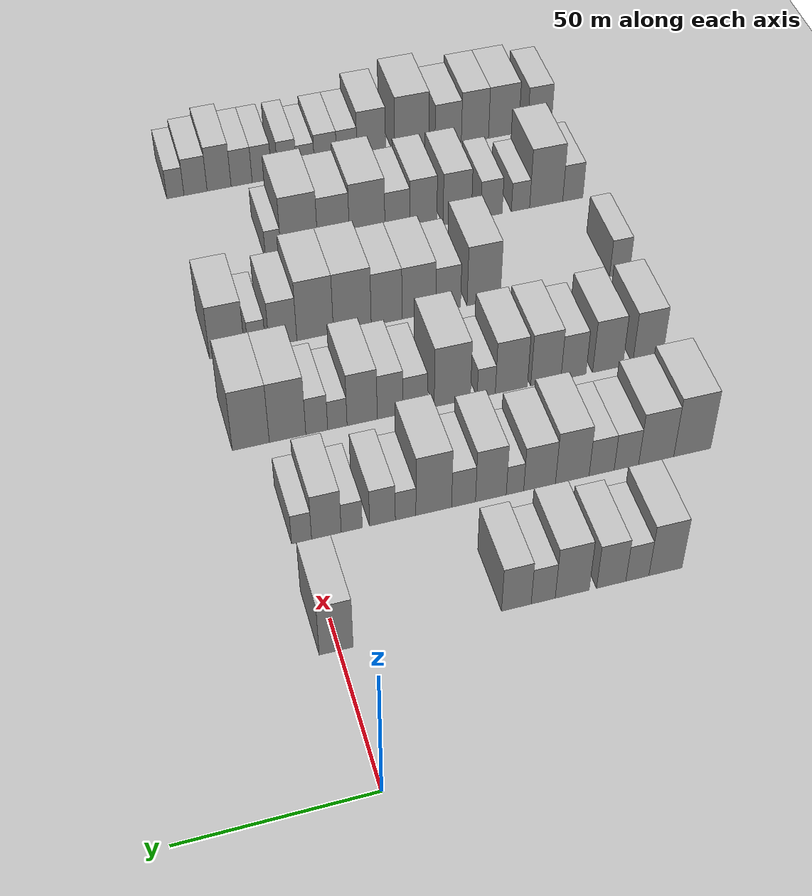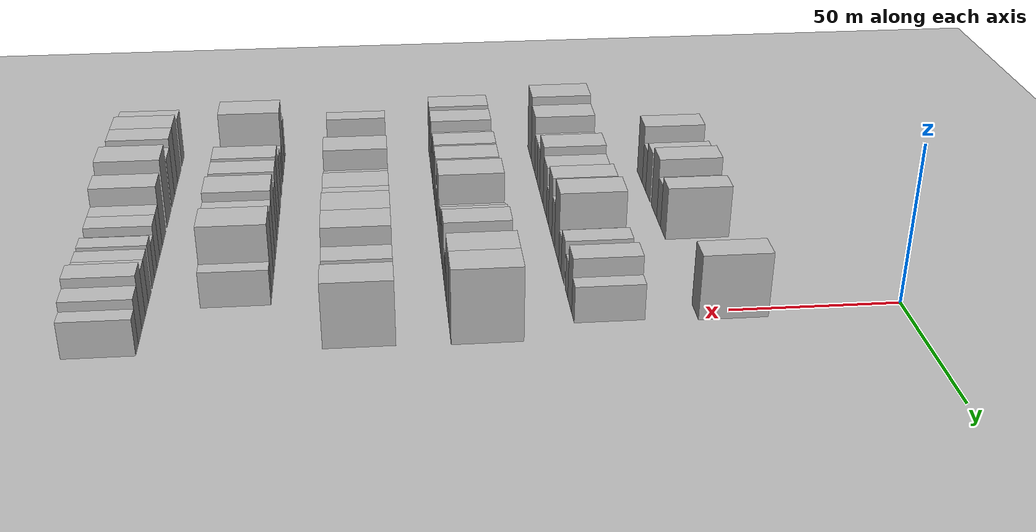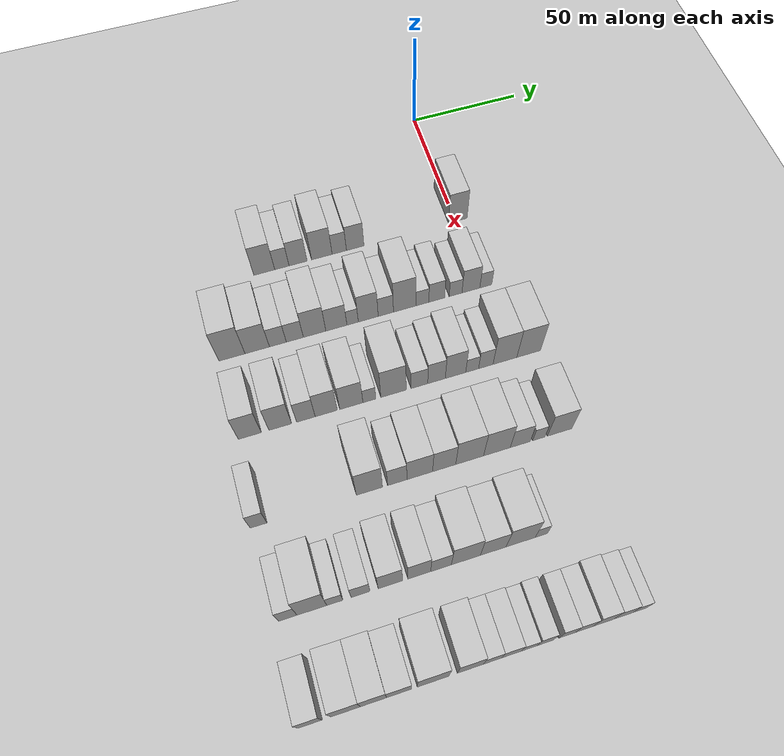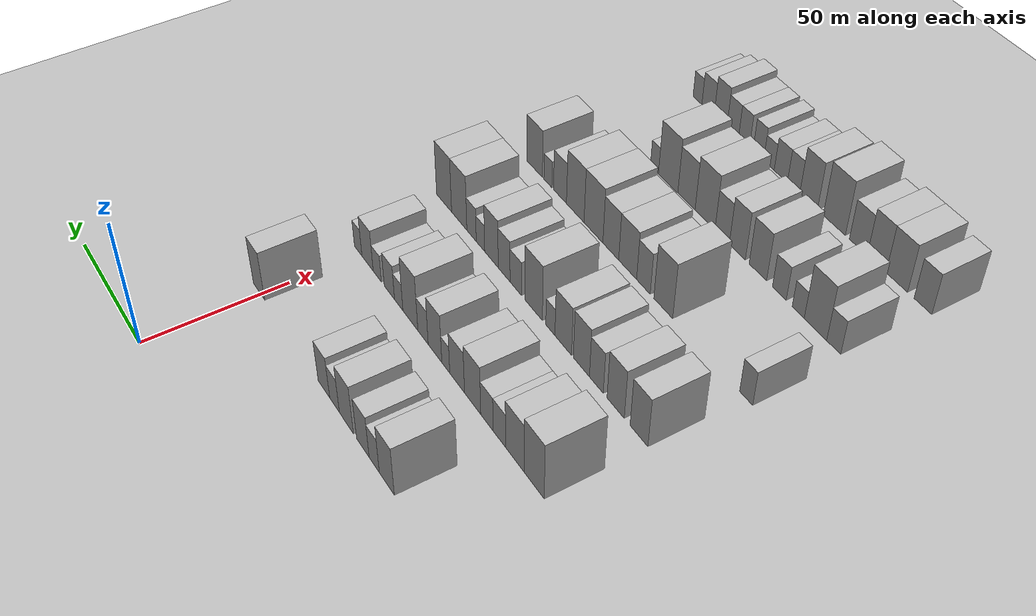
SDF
<sdf version="1.6">
 <world name="default">
  <include><name>ground_plane_1</name><uri>model://HANNAS_ground_plane</uri></include>
  <include>
   <name>ground_plane_2</name>
   <uri>model://HANNAS_ground_plane</uri>
   <pose>100 0 0  0 0 0</pose>
  </include>
  <model name="building_46">
   <static>1</static>
   <pose>50.0000 -86.3542 0 0.000000 0.000000 0.000000</pose>
   <link name="link">
    <pose>0 0 10.50 0 0 0</pose>
    <collision name="collision"><geometry><box><size>20.0000 9.0873 21.0000</size></box></geometry></collision>
    <visual name="visual">
     <cast_shadows>0</cast_shadows>
     <geometry><box><size>20.0000 9.0873 21.0000</size></box></geometry>
     <material>
      <script>
       <uri>model://HANNAS_wall/materials/scripts</uri>
       <uri>model://HANNAS_wall/materials/textures</uri>
       <name>vrc/HANNAS_wall</name>
      </script>
     </material>
    </visual>
   </link>
  </model>
  <model name="building_47">
   <static>1</static>
   <pose>50.0000 -78.6596 0 0.000000 0.000000 0.000000</pose>
   <link name="link">
    <pose>0 0 7.50 0 0 0</pose>
    <collision name="collision"><geometry><box><size>20.0000 6.3020 15.0000</size></box></geometry></collision>
    <visual name="visual">
     <cast_shadows>0</cast_shadows>
     <geometry><box><size>20.0000 6.3020 15.0000</size></box></geometry>
     <material>
      <script>
       <uri>model://HANNAS_wall/materials/scripts</uri>
       <uri>model://HANNAS_wall/materials/textures</uri>
       <name>vrc/HANNAS_wall</name>
      </script>
     </material>
    </visual>
   </link>
  </model>
  <model name="building_48">
   <static>1</static>
   <pose>50.0000 -71.5418 0 0.000000 0.000000 0.000000</pose>
   <link name="link">
    <pose>0 0 9.00 0 0 0</pose>
    <collision name="collision"><geometry><box><size>20.0000 7.9337 18.0000</size></box></geometry></collision>
    <visual name="visual">
     <cast_shadows>0</cast_shadows>
     <geometry><box><size>20.0000 7.9337 18.0000</size></box></geometry>
     <material>
      <script>
       <uri>model://HANNAS_wall/materials/scripts</uri>
       <uri>model://HANNAS_wall/materials/textures</uri>
       <name>vrc/HANNAS_wall</name>
      </script>
     </material>
    </visual>
   </link>
  </model>
  <model name="building_49">
   <static>1</static>
   <pose>50.0000 -61.0111 0 0.000000 0.000000 0.000000</pose>
   <link name="link">
    <pose>0 0 10.50 0 0 0</pose>
    <collision name="collision"><geometry><box><size>20.0000 9.1278 21.0000</size></box></geometry></collision>
    <visual name="visual">
     <cast_shadows>0</cast_shadows>
     <geometry><box><size>20.0000 9.1278 21.0000</size></box></geometry>
     <material>
      <script>
       <uri>model://HANNAS_wall/materials/scripts</uri>
       <uri>model://HANNAS_wall/materials/textures</uri>
       <name>vrc/HANNAS_wall</name>
      </script>
     </material>
    </visual>
   </link>
  </model>
  <model name="building_50">
   <static>1</static>
   <pose>50.0000 -53.2371 0 0.000000 0.000000 0.000000</pose>
   <link name="link">
    <pose>0 0 7.50 0 0 0</pose>
    <collision name="collision"><geometry><box><size>20.0000 6.4201 15.0000</size></box></geometry></collision>
    <visual name="visual">
     <cast_shadows>0</cast_shadows>
     <geometry><box><size>20.0000 6.4201 15.0000</size></box></geometry>
     <material>
      <script>
       <uri>model://HANNAS_wall/materials/scripts</uri>
       <uri>model://HANNAS_wall/materials/textures</uri>
       <name>vrc/HANNAS_wall</name>
      </script>
     </material>
    </visual>
   </link>
  </model>
  <model name="building_51">
   <static>1</static>
   <pose>50.0000 -46.0940 0 0.000000 0.000000 0.000000</pose>
   <link name="link">
    <pose>0 0 9.00 0 0 0</pose>
    <collision name="collision"><geometry><box><size>20.0000 7.8661 18.0000</size></box></geometry></collision>
    <visual name="visual">
     <cast_shadows>0</cast_shadows>
     <geometry><box><size>20.0000 7.8661 18.0000</size></box></geometry>
     <material>
      <script>
       <uri>model://HANNAS_wall/materials/scripts</uri>
       <uri>model://HANNAS_wall/materials/textures</uri>
       <name>vrc/HANNAS_wall</name>
      </script>
     </material>
    </visual>
   </link>
  </model>
  <model name="building_52">
   <static>1</static>
   <pose>50.0000 0.8104 0 0.000000 0.000000 0.000000</pose>
   <link name="link">
    <pose>0 0 10.50 0 0 0</pose>
    <collision name="collision"><geometry><box><size>20.0000 8.6476 21.0000</size></box></geometry></collision>
    <visual name="visual">
     <cast_shadows>0</cast_shadows>
     <geometry><box><size>20.0000 8.6476 21.0000</size></box></geometry>
     <material>
      <script>
       <uri>model://HANNAS_wall/materials/scripts</uri>
       <uri>model://HANNAS_wall/materials/textures</uri>
       <name>vrc/HANNAS_wall</name>
      </script>
     </material>
    </visual>
   </link>
  </model>
  <model name="building_158">
   <static>1</static>
   <pose>85.0000 -107.9376 0 0.000000 0.000000 0.000000</pose>
   <link name="link">
    <pose>0 0 12.00 0 0 0</pose>
    <collision name="collision"><geometry><box><size>20.0000 10.7499 24.0000</size></box></geometry></collision>
    <visual name="visual">
     <cast_shadows>0</cast_shadows>
     <geometry><box><size>20.0000 10.7499 24.0000</size></box></geometry>
     <material>
      <script>
       <uri>model://HANNAS_wall/materials/scripts</uri>
       <uri>model://HANNAS_wall/materials/textures</uri>
       <name>vrc/HANNAS_wall</name>
      </script>
     </material>
    </visual>
   </link>
  </model>
  <model name="building_159">
   <static>1</static>
   <pose>85.0000 -97.4823 0 0.000000 0.000000 0.000000</pose>
   <link name="link">
    <pose>0 0 10.50 0 0 0</pose>
    <collision name="collision"><geometry><box><size>20.0000 10.1606 21.0000</size></box></geometry></collision>
    <visual name="visual">
     <cast_shadows>0</cast_shadows>
     <geometry><box><size>20.0000 10.1606 21.0000</size></box></geometry>
     <material>
      <script>
       <uri>model://HANNAS_wall/materials/scripts</uri>
       <uri>model://HANNAS_wall/materials/textures</uri>
       <name>vrc/HANNAS_wall</name>
      </script>
     </material>
    </visual>
   </link>
  </model>
  <model name="building_160">
   <static>1</static>
   <pose>85.0000 -88.8793 0 0.000000 0.000000 0.000000</pose>
   <link name="link">
    <pose>0 0 7.50 0 0 0</pose>
    <collision name="collision"><geometry><box><size>20.0000 7.0454 15.0000</size></box></geometry></collision>
    <visual name="visual">
     <cast_shadows>0</cast_shadows>
     <geometry><box><size>20.0000 7.0454 15.0000</size></box></geometry>
     <material>
      <script>
       <uri>model://HANNAS_wall/materials/scripts</uri>
       <uri>model://HANNAS_wall/materials/textures</uri>
       <name>vrc/HANNAS_wall</name>
      </script>
     </material>
    </visual>
   </link>
  </model>
  <model name="building_161">
   <static>1</static>
   <pose>85.0000 -81.7732 0 0.000000 0.000000 0.000000</pose>
   <link name="link">
    <pose>0 0 7.50 0 0 0</pose>
    <collision name="collision"><geometry><box><size>20.0000 7.1669 15.0000</size></box></geometry></collision>
    <visual name="visual">
     <cast_shadows>0</cast_shadows>
     <geometry><box><size>20.0000 7.1669 15.0000</size></box></geometry>
     <material>
      <script>
       <uri>model://HANNAS_wall/materials/scripts</uri>
       <uri>model://HANNAS_wall/materials/textures</uri>
       <name>vrc/HANNAS_wall</name>
      </script>
     </material>
    </visual>
   </link>
  </model>
  <model name="building_162">
   <static>1</static>
   <pose>85.0000 -73.4144 0 0.000000 0.000000 0.000000</pose>
   <link name="link">
    <pose>0 0 10.50 0 0 0</pose>
    <collision name="collision"><geometry><box><size>20.0000 9.5506 21.0000</size></box></geometry></collision>
    <visual name="visual">
     <cast_shadows>0</cast_shadows>
     <geometry><box><size>20.0000 9.5506 21.0000</size></box></geometry>
     <material>
      <script>
       <uri>model://HANNAS_wall/materials/scripts</uri>
       <uri>model://HANNAS_wall/materials/textures</uri>
       <name>vrc/HANNAS_wall</name>
      </script>
     </material>
    </visual>
   </link>
  </model>
  <model name="building_163">
   <static>1</static>
   <pose>85.0000 -64.1624 0 0.000000 0.000000 0.000000</pose>
   <link name="link">
    <pose>0 0 9.00 0 0 0</pose>
    <collision name="collision"><geometry><box><size>20.0000 8.9534 18.0000</size></box></geometry></collision>
    <visual name="visual">
     <cast_shadows>0</cast_shadows>
     <geometry><box><size>20.0000 8.9534 18.0000</size></box></geometry>
     <material>
      <script>
       <uri>model://HANNAS_wall/materials/scripts</uri>
       <uri>model://HANNAS_wall/materials/textures</uri>
       <name>vrc/HANNAS_wall</name>
      </script>
     </material>
    </visual>
   </link>
  </model>
  <model name="building_164">
   <static>1</static>
   <pose>85.0000 -57.2387 0 0.000000 0.000000 0.000000</pose>
   <link name="link">
    <pose>0 0 6.00 0 0 0</pose>
    <collision name="collision"><geometry><box><size>20.0000 4.8940 12.0000</size></box></geometry></collision>
    <visual name="visual">
     <cast_shadows>0</cast_shadows>
     <geometry><box><size>20.0000 4.8940 12.0000</size></box></geometry>
     <material>
      <script>
       <uri>model://HANNAS_wall/materials/scripts</uri>
       <uri>model://HANNAS_wall/materials/textures</uri>
       <name>vrc/HANNAS_wall</name>
      </script>
     </material>
    </visual>
   </link>
  </model>
  <model name="building_165">
   <static>1</static>
   <pose>85.0000 -50.5072 0 0.000000 0.000000 0.000000</pose>
   <link name="link">
    <pose>0 0 10.50 0 0 0</pose>
    <collision name="collision"><geometry><box><size>20.0000 8.5690 21.0000</size></box></geometry></collision>
    <visual name="visual">
     <cast_shadows>0</cast_shadows>
     <geometry><box><size>20.0000 8.5690 21.0000</size></box></geometry>
     <material>
      <script>
       <uri>model://HANNAS_wall/materials/scripts</uri>
       <uri>model://HANNAS_wall/materials/textures</uri>
       <name>vrc/HANNAS_wall</name>
      </script>
     </material>
    </visual>
   </link>
  </model>
  <model name="building_166">
   <static>1</static>
   <pose>85.0000 -42.9119 0 0.000000 0.000000 0.000000</pose>
   <link name="link">
    <pose>0 0 7.50 0 0 0</pose>
    <collision name="collision"><geometry><box><size>20.0000 6.6216 15.0000</size></box></geometry></collision>
    <visual name="visual">
     <cast_shadows>0</cast_shadows>
     <geometry><box><size>20.0000 6.6216 15.0000</size></box></geometry>
     <material>
      <script>
       <uri>model://HANNAS_wall/materials/scripts</uri>
       <uri>model://HANNAS_wall/materials/textures</uri>
       <name>vrc/HANNAS_wall</name>
      </script>
     </material>
    </visual>
   </link>
  </model>
  <model name="building_167">
   <static>1</static>
   <pose>85.0000 -34.6883 0 0.000000 0.000000 0.000000</pose>
   <link name="link">
    <pose>0 0 12.00 0 0 0</pose>
    <collision name="collision"><geometry><box><size>20.0000 9.8257 24.0000</size></box></geometry></collision>
    <visual name="visual">
     <cast_shadows>0</cast_shadows>
     <geometry><box><size>20.0000 9.8257 24.0000</size></box></geometry>
     <material>
      <script>
       <uri>model://HANNAS_wall/materials/scripts</uri>
       <uri>model://HANNAS_wall/materials/textures</uri>
       <name>vrc/HANNAS_wall</name>
      </script>
     </material>
    </visual>
   </link>
  </model>
  <model name="building_168">
   <static>1</static>
   <pose>85.0000 -26.9645 0 0.000000 0.000000 0.000000</pose>
   <link name="link">
    <pose>0 0 6.00 0 0 0</pose>
    <collision name="collision"><geometry><box><size>20.0000 5.6218 12.0000</size></box></geometry></collision>
    <visual name="visual">
     <cast_shadows>0</cast_shadows>
     <geometry><box><size>20.0000 5.6218 12.0000</size></box></geometry>
     <material>
      <script>
       <uri>model://HANNAS_wall/materials/scripts</uri>
       <uri>model://HANNAS_wall/materials/textures</uri>
       <name>vrc/HANNAS_wall</name>
      </script>
     </material>
    </visual>
   </link>
  </model>
  <model name="building_169">
   <static>1</static>
   <pose>85.0000 -20.6513 0 0.000000 0.000000 0.000000</pose>
   <link name="link">
    <pose>0 0 7.50 0 0 0</pose>
    <collision name="collision"><geometry><box><size>20.0000 7.0046 15.0000</size></box></geometry></collision>
    <visual name="visual">
     <cast_shadows>0</cast_shadows>
     <geometry><box><size>20.0000 7.0046 15.0000</size></box></geometry>
     <material>
      <script>
       <uri>model://HANNAS_wall/materials/scripts</uri>
       <uri>model://HANNAS_wall/materials/textures</uri>
       <name>vrc/HANNAS_wall</name>
      </script>
     </material>
    </visual>
   </link>
  </model>
  <model name="building_170">
   <static>1</static>
   <pose>85.0000 -12.3137 0 0.000000 0.000000 0.000000</pose>
   <link name="link">
    <pose>0 0 6.00 0 0 0</pose>
    <collision name="collision"><geometry><box><size>20.0000 5.6706 12.0000</size></box></geometry></collision>
    <visual name="visual">
     <cast_shadows>0</cast_shadows>
     <geometry><box><size>20.0000 5.6706 12.0000</size></box></geometry>
     <material>
      <script>
       <uri>model://HANNAS_wall/materials/scripts</uri>
       <uri>model://HANNAS_wall/materials/textures</uri>
       <name>vrc/HANNAS_wall</name>
      </script>
     </material>
    </visual>
   </link>
  </model>
  <model name="building_171">
   <static>1</static>
   <pose>85.0000 -5.4890 0 0.000000 0.000000 0.000000</pose>
   <link name="link">
    <pose>0 0 9.00 0 0 0</pose>
    <collision name="collision"><geometry><box><size>20.0000 7.9788 18.0000</size></box></geometry></collision>
    <visual name="visual">
     <cast_shadows>0</cast_shadows>
     <geometry><box><size>20.0000 7.9788 18.0000</size></box></geometry>
     <material>
      <script>
       <uri>model://HANNAS_wall/materials/scripts</uri>
       <uri>model://HANNAS_wall/materials/textures</uri>
       <name>vrc/HANNAS_wall</name>
      </script>
     </material>
    </visual>
   </link>
  </model>
  <model name="building_172">
   <static>1</static>
   <pose>85.0000 1.1762 0 0.000000 0.000000 0.000000</pose>
   <link name="link">
    <pose>0 0 6.00 0 0 0</pose>
    <collision name="collision"><geometry><box><size>20.0000 5.3516 12.0000</size></box></geometry></collision>
    <visual name="visual">
     <cast_shadows>0</cast_shadows>
     <geometry><box><size>20.0000 5.3516 12.0000</size></box></geometry>
     <material>
      <script>
       <uri>model://HANNAS_wall/materials/scripts</uri>
       <uri>model://HANNAS_wall/materials/textures</uri>
       <name>vrc/HANNAS_wall</name>
      </script>
     </material>
    </visual>
   </link>
  </model>
  <model name="building_283">
   <static>1</static>
   <pose>120.0000 -108.5047 0 0.000000 0.000000 0.000000</pose>
   <link name="link">
    <pose>0 0 10.50 0 0 0</pose>
    <collision name="collision"><geometry><box><size>20.0000 9.0826 21.0000</size></box></geometry></collision>
    <visual name="visual">
     <cast_shadows>0</cast_shadows>
     <geometry><box><size>20.0000 9.0826 21.0000</size></box></geometry>
     <material>
      <script>
       <uri>model://HANNAS_wall/materials/scripts</uri>
       <uri>model://HANNAS_wall/materials/textures</uri>
       <name>vrc/HANNAS_wall</name>
      </script>
     </material>
    </visual>
   </link>
  </model>
  <model name="building_284">
   <static>1</static>
   <pose>120.0000 -96.4222 0 0.000000 0.000000 0.000000</pose>
   <link name="link">
    <pose>0 0 10.50 0 0 0</pose>
    <collision name="collision"><geometry><box><size>20.0000 9.0823 21.0000</size></box></geometry></collision>
    <visual name="visual">
     <cast_shadows>0</cast_shadows>
     <geometry><box><size>20.0000 9.0823 21.0000</size></box></geometry>
     <material>
      <script>
       <uri>model://HANNAS_wall/materials/scripts</uri>
       <uri>model://HANNAS_wall/materials/textures</uri>
       <name>vrc/HANNAS_wall</name>
      </script>
     </material>
    </visual>
   </link>
  </model>
  <model name="building_285">
   <static>1</static>
   <pose>120.0000 -86.1348 0 0.000000 0.000000 0.000000</pose>
   <link name="link">
    <pose>0 0 9.00 0 0 0</pose>
    <collision name="collision"><geometry><box><size>20.0000 7.4926 18.0000</size></box></geometry></collision>
    <visual name="visual">
     <cast_shadows>0</cast_shadows>
     <geometry><box><size>20.0000 7.4926 18.0000</size></box></geometry>
     <material>
      <script>
       <uri>model://HANNAS_wall/materials/scripts</uri>
       <uri>model://HANNAS_wall/materials/textures</uri>
       <name>vrc/HANNAS_wall</name>
      </script>
     </material>
    </visual>
   </link>
  </model>
  <model name="building_286">
   <static>1</static>
   <pose>120.0000 -77.9074 0 0.000000 0.000000 0.000000</pose>
   <link name="link">
    <pose>0 0 10.50 0 0 0</pose>
    <collision name="collision"><geometry><box><size>20.0000 8.9621 21.0000</size></box></geometry></collision>
    <visual name="visual">
     <cast_shadows>0</cast_shadows>
     <geometry><box><size>20.0000 8.9621 21.0000</size></box></geometry>
     <material>
      <script>
       <uri>model://HANNAS_wall/materials/scripts</uri>
       <uri>model://HANNAS_wall/materials/textures</uri>
       <name>vrc/HANNAS_wall</name>
      </script>
     </material>
    </visual>
   </link>
  </model>
  <model name="building_287">
   <static>1</static>
   <pose>120.0000 -67.7003 0 0.000000 0.000000 0.000000</pose>
   <link name="link">
    <pose>0 0 10.50 0 0 0</pose>
    <collision name="collision"><geometry><box><size>20.0000 9.4520 21.0000</size></box></geometry></collision>
    <visual name="visual">
     <cast_shadows>0</cast_shadows>
     <geometry><box><size>20.0000 9.4520 21.0000</size></box></geometry>
     <material>
      <script>
       <uri>model://HANNAS_wall/materials/scripts</uri>
       <uri>model://HANNAS_wall/materials/textures</uri>
       <name>vrc/HANNAS_wall</name>
      </script>
     </material>
    </visual>
   </link>
  </model>
  <model name="building_288">
   <static>1</static>
   <pose>120.0000 -60.3147 0 0.000000 0.000000 0.000000</pose>
   <link name="link">
    <pose>0 0 6.00 0 0 0</pose>
    <collision name="collision"><geometry><box><size>20.0000 5.3193 12.0000</size></box></geometry></collision>
    <visual name="visual">
     <cast_shadows>0</cast_shadows>
     <geometry><box><size>20.0000 5.3193 12.0000</size></box></geometry>
     <material>
      <script>
       <uri>model://HANNAS_wall/materials/scripts</uri>
       <uri>model://HANNAS_wall/materials/textures</uri>
       <name>vrc/HANNAS_wall</name>
      </script>
     </material>
    </visual>
   </link>
  </model>
  <model name="building_289">
   <static>1</static>
   <pose>120.0000 -50.3908 0 0.000000 0.000000 0.000000</pose>
   <link name="link">
    <pose>0 0 12.00 0 0 0</pose>
    <collision name="collision"><geometry><box><size>20.0000 10.5284 24.0000</size></box></geometry></collision>
    <visual name="visual">
     <cast_shadows>0</cast_shadows>
     <geometry><box><size>20.0000 10.5284 24.0000</size></box></geometry>
     <material>
      <script>
       <uri>model://HANNAS_wall/materials/scripts</uri>
       <uri>model://HANNAS_wall/materials/textures</uri>
       <name>vrc/HANNAS_wall</name>
      </script>
     </material>
    </visual>
   </link>
  </model>
  <model name="building_290">
   <static>1</static>
   <pose>120.0000 -39.6310 0 0.000000 0.000000 0.000000</pose>
   <link name="link">
    <pose>0 0 7.50 0 0 0</pose>
    <collision name="collision"><geometry><box><size>20.0000 6.9912 15.0000</size></box></geometry></collision>
    <visual name="visual">
     <cast_shadows>0</cast_shadows>
     <geometry><box><size>20.0000 6.9912 15.0000</size></box></geometry>
     <material>
      <script>
       <uri>model://HANNAS_wall/materials/scripts</uri>
       <uri>model://HANNAS_wall/materials/textures</uri>
       <name>vrc/HANNAS_wall</name>
      </script>
     </material>
    </visual>
   </link>
  </model>
  <model name="building_291">
   <static>1</static>
   <pose>120.0000 -32.4423 0 0.000000 0.000000 0.000000</pose>
   <link name="link">
    <pose>0 0 9.00 0 0 0</pose>
    <collision name="collision"><geometry><box><size>20.0000 7.3863 18.0000</size></box></geometry></collision>
    <visual name="visual">
     <cast_shadows>0</cast_shadows>
     <geometry><box><size>20.0000 7.3863 18.0000</size></box></geometry>
     <material>
      <script>
       <uri>model://HANNAS_wall/materials/scripts</uri>
       <uri>model://HANNAS_wall/materials/textures</uri>
       <name>vrc/HANNAS_wall</name>
      </script>
     </material>
    </visual>
   </link>
  </model>
  <model name="building_292">
   <static>1</static>
   <pose>120.0000 -24.4354 0 0.000000 0.000000 0.000000</pose>
   <link name="link">
    <pose>0 0 10.50 0 0 0</pose>
    <collision name="collision"><geometry><box><size>20.0000 8.6274 21.0000</size></box></geometry></collision>
    <visual name="visual">
     <cast_shadows>0</cast_shadows>
     <geometry><box><size>20.0000 8.6274 21.0000</size></box></geometry>
     <material>
      <script>
       <uri>model://HANNAS_wall/materials/scripts</uri>
       <uri>model://HANNAS_wall/materials/textures</uri>
       <name>vrc/HANNAS_wall</name>
      </script>
     </material>
    </visual>
   </link>
  </model>
  <model name="building_293">
   <static>1</static>
   <pose>120.0000 -17.3724 0 0.000000 0.000000 0.000000</pose>
   <link name="link">
    <pose>0 0 6.00 0 0 0</pose>
    <collision name="collision"><geometry><box><size>20.0000 5.4987 12.0000</size></box></geometry></collision>
    <visual name="visual">
     <cast_shadows>0</cast_shadows>
     <geometry><box><size>20.0000 5.4987 12.0000</size></box></geometry>
     <material>
      <script>
       <uri>model://HANNAS_wall/materials/scripts</uri>
       <uri>model://HANNAS_wall/materials/textures</uri>
       <name>vrc/HANNAS_wall</name>
      </script>
     </material>
    </visual>
   </link>
  </model>
  <model name="building_294">
   <static>1</static>
   <pose>120.0000 -11.5353 0 0.000000 0.000000 0.000000</pose>
   <link name="link">
    <pose>0 0 7.50 0 0 0</pose>
    <collision name="collision"><geometry><box><size>20.0000 6.1754 15.0000</size></box></geometry></collision>
    <visual name="visual">
     <cast_shadows>0</cast_shadows>
     <geometry><box><size>20.0000 6.1754 15.0000</size></box></geometry>
     <material>
      <script>
       <uri>model://HANNAS_wall/materials/scripts</uri>
       <uri>model://HANNAS_wall/materials/textures</uri>
       <name>vrc/HANNAS_wall</name>
      </script>
     </material>
    </visual>
   </link>
  </model>
  <model name="building_295">
   <static>1</static>
   <pose>120.0000 -3.3147 0 0.000000 0.000000 0.000000</pose>
   <link name="link">
    <pose>0 0 12.00 0 0 0</pose>
    <collision name="collision"><geometry><box><size>20.0000 10.2658 24.0000</size></box></geometry></collision>
    <visual name="visual">
     <cast_shadows>0</cast_shadows>
     <geometry><box><size>20.0000 10.2658 24.0000</size></box></geometry>
     <material>
      <script>
       <uri>model://HANNAS_wall/materials/scripts</uri>
       <uri>model://HANNAS_wall/materials/textures</uri>
       <name>vrc/HANNAS_wall</name>
      </script>
     </material>
    </visual>
   </link>
  </model>
  <model name="building_296">
   <static>1</static>
   <pose>120.0000 6.9777 0 0.000000 0.000000 0.000000</pose>
   <link name="link">
    <pose>0 0 12.00 0 0 0</pose>
    <collision name="collision"><geometry><box><size>20.0000 10.3190 24.0000</size></box></geometry></collision>
    <visual name="visual">
     <cast_shadows>0</cast_shadows>
     <geometry><box><size>20.0000 10.3190 24.0000</size></box></geometry>
     <material>
      <script>
       <uri>model://HANNAS_wall/materials/scripts</uri>
       <uri>model://HANNAS_wall/materials/textures</uri>
       <name>vrc/HANNAS_wall</name>
      </script>
     </material>
    </visual>
   </link>
  </model>
  <model name="building_403">
   <static>1</static>
   <pose>155.0000 -113.1144 0 0.000000 0.000000 0.000000</pose>
   <link name="link">
    <pose>0 0 7.50 0 0 0</pose>
    <collision name="collision"><geometry><box><size>20.0000 6.3294 15.0000</size></box></geometry></collision>
    <visual name="visual">
     <cast_shadows>0</cast_shadows>
     <geometry><box><size>20.0000 6.3294 15.0000</size></box></geometry>
     <material>
      <script>
       <uri>model://HANNAS_wall/materials/scripts</uri>
       <uri>model://HANNAS_wall/materials/textures</uri>
       <name>vrc/HANNAS_wall</name>
      </script>
     </material>
    </visual>
   </link>
  </model>
  <model name="building_404">
   <static>1</static>
   <pose>155.0000 -70.6174 0 0.000000 0.000000 0.000000</pose>
   <link name="link">
    <pose>0 0 12.00 0 0 0</pose>
    <collision name="collision"><geometry><box><size>20.0000 10.2215 24.0000</size></box></geometry></collision>
    <visual name="visual">
     <cast_shadows>0</cast_shadows>
     <geometry><box><size>20.0000 10.2215 24.0000</size></box></geometry>
     <material>
      <script>
       <uri>model://HANNAS_wall/materials/scripts</uri>
       <uri>model://HANNAS_wall/materials/textures</uri>
       <name>vrc/HANNAS_wall</name>
      </script>
     </material>
    </visual>
   </link>
  </model>
  <model name="building_405">
   <static>1</static>
   <pose>155.0000 -59.7151 0 0.000000 0.000000 0.000000</pose>
   <link name="link">
    <pose>0 0 9.00 0 0 0</pose>
    <collision name="collision"><geometry><box><size>20.0000 7.5831 18.0000</size></box></geometry></collision>
    <visual name="visual">
     <cast_shadows>0</cast_shadows>
     <geometry><box><size>20.0000 7.5831 18.0000</size></box></geometry>
     <material>
      <script>
       <uri>model://HANNAS_wall/materials/scripts</uri>
       <uri>model://HANNAS_wall/materials/textures</uri>
       <name>vrc/HANNAS_wall</name>
      </script>
     </material>
    </visual>
   </link>
  </model>
  <model name="building_406">
   <static>1</static>
   <pose>155.0000 -50.8038 0 0.000000 0.000000 0.000000</pose>
   <link name="link">
    <pose>0 0 10.50 0 0 0</pose>
    <collision name="collision"><geometry><box><size>20.0000 10.2396 21.0000</size></box></geometry></collision>
    <visual name="visual">
     <cast_shadows>0</cast_shadows>
     <geometry><box><size>20.0000 10.2396 21.0000</size></box></geometry>
     <material>
      <script>
       <uri>model://HANNAS_wall/materials/scripts</uri>
       <uri>model://HANNAS_wall/materials/textures</uri>
       <name>vrc/HANNAS_wall</name>
      </script>
     </material>
    </visual>
   </link>
  </model>
  <model name="building_407">
   <static>1</static>
   <pose>155.0000 -41.0567 0 0.000000 0.000000 0.000000</pose>
   <link name="link">
    <pose>0 0 10.50 0 0 0</pose>
    <collision name="collision"><geometry><box><size>20.0000 9.2545 21.0000</size></box></geometry></collision>
    <visual name="visual">
     <cast_shadows>0</cast_shadows>
     <geometry><box><size>20.0000 9.2545 21.0000</size></box></geometry>
     <material>
      <script>
       <uri>model://HANNAS_wall/materials/scripts</uri>
       <uri>model://HANNAS_wall/materials/textures</uri>
       <name>vrc/HANNAS_wall</name>
      </script>
     </material>
    </visual>
   </link>
  </model>
  <model name="building_408">
   <static>1</static>
   <pose>155.0000 -30.7791 0 0.000000 0.000000 0.000000</pose>
   <link name="link">
    <pose>0 0 12.00 0 0 0</pose>
    <collision name="collision"><geometry><box><size>20.0000 11.3008 24.0000</size></box></geometry></collision>
    <visual name="visual">
     <cast_shadows>0</cast_shadows>
     <geometry><box><size>20.0000 11.3008 24.0000</size></box></geometry>
     <material>
      <script>
       <uri>model://HANNAS_wall/materials/scripts</uri>
       <uri>model://HANNAS_wall/materials/textures</uri>
       <name>vrc/HANNAS_wall</name>
      </script>
     </material>
    </visual>
   </link>
  </model>
  <model name="building_409">
   <static>1</static>
   <pose>155.0000 -19.6947 0 0.000000 0.000000 0.000000</pose>
   <link name="link">
    <pose>0 0 12.00 0 0 0</pose>
    <collision name="collision"><geometry><box><size>20.0000 10.8681 24.0000</size></box></geometry></collision>
    <visual name="visual">
     <cast_shadows>0</cast_shadows>
     <geometry><box><size>20.0000 10.8681 24.0000</size></box></geometry>
     <material>
      <script>
       <uri>model://HANNAS_wall/materials/scripts</uri>
       <uri>model://HANNAS_wall/materials/textures</uri>
       <name>vrc/HANNAS_wall</name>
      </script>
     </material>
    </visual>
   </link>
  </model>
  <model name="building_410">
   <static>1</static>
   <pose>155.0000 -10.1672 0 0.000000 0.000000 0.000000</pose>
   <link name="link">
    <pose>0 0 9.00 0 0 0</pose>
    <collision name="collision"><geometry><box><size>20.0000 8.1869 18.0000</size></box></geometry></collision>
    <visual name="visual">
     <cast_shadows>0</cast_shadows>
     <geometry><box><size>20.0000 8.1869 18.0000</size></box></geometry>
     <material>
      <script>
       <uri>model://HANNAS_wall/materials/scripts</uri>
       <uri>model://HANNAS_wall/materials/textures</uri>
       <name>vrc/HANNAS_wall</name>
      </script>
     </material>
    </visual>
   </link>
  </model>
  <model name="building_411">
   <static>1</static>
   <pose>155.0000 -2.5111 0 0.000000 0.000000 0.000000</pose>
   <link name="link">
    <pose>0 0 6.00 0 0 0</pose>
    <collision name="collision"><geometry><box><size>20.0000 5.1253 12.0000</size></box></geometry></collision>
    <visual name="visual">
     <cast_shadows>0</cast_shadows>
     <geometry><box><size>20.0000 5.1253 12.0000</size></box></geometry>
     <material>
      <script>
       <uri>model://HANNAS_wall/materials/scripts</uri>
       <uri>model://HANNAS_wall/materials/textures</uri>
       <name>vrc/HANNAS_wall</name>
      </script>
     </material>
    </visual>
   </link>
  </model>
  <model name="building_412">
   <static>1</static>
   <pose>155.0000 6.1684 0 0.000000 0.000000 0.000000</pose>
   <link name="link">
    <pose>0 0 10.50 0 0 0</pose>
    <collision name="collision"><geometry><box><size>20.0000 10.2336 21.0000</size></box></geometry></collision>
    <visual name="visual">
     <cast_shadows>0</cast_shadows>
     <geometry><box><size>20.0000 10.2336 21.0000</size></box></geometry>
     <material>
      <script>
       <uri>model://HANNAS_wall/materials/scripts</uri>
       <uri>model://HANNAS_wall/materials/textures</uri>
       <name>vrc/HANNAS_wall</name>
      </script>
     </material>
    </visual>
   </link>
  </model>
  <model name="building_532">
   <static>1</static>
   <pose>190.0000 -110.7091 0 0.000000 0.000000 0.000000</pose>
   <link name="link">
    <pose>0 0 7.50 0 0 0</pose>
    <collision name="collision"><geometry><box><size>20.0000 6.6199 15.0000</size></box></geometry></collision>
    <visual name="visual">
     <cast_shadows>0</cast_shadows>
     <geometry><box><size>20.0000 6.6199 15.0000</size></box></geometry>
     <material>
      <script>
       <uri>model://HANNAS_wall/materials/scripts</uri>
       <uri>model://HANNAS_wall/materials/textures</uri>
       <name>vrc/HANNAS_wall</name>
      </script>
     </material>
    </visual>
   </link>
  </model>
  <model name="building_533">
   <static>1</static>
   <pose>190.0000 -101.9910 0 0.000000 0.000000 0.000000</pose>
   <link name="link">
    <pose>0 0 12.00 0 0 0</pose>
    <collision name="collision"><geometry><box><size>20.0000 10.8162 24.0000</size></box></geometry></collision>
    <visual name="visual">
     <cast_shadows>0</cast_shadows>
     <geometry><box><size>20.0000 10.8162 24.0000</size></box></geometry>
     <material>
      <script>
       <uri>model://HANNAS_wall/materials/scripts</uri>
       <uri>model://HANNAS_wall/materials/textures</uri>
       <name>vrc/HANNAS_wall</name>
      </script>
     </material>
    </visual>
   </link>
  </model>
  <model name="building_534">
   <static>1</static>
   <pose>190.0000 -93.6193 0 0.000000 0.000000 0.000000</pose>
   <link name="link">
    <pose>0 0 6.00 0 0 0</pose>
    <collision name="collision"><geometry><box><size>20.0000 5.9272 12.0000</size></box></geometry></collision>
    <visual name="visual">
     <cast_shadows>0</cast_shadows>
     <geometry><box><size>20.0000 5.9272 12.0000</size></box></geometry>
     <material>
      <script>
       <uri>model://HANNAS_wall/materials/scripts</uri>
       <uri>model://HANNAS_wall/materials/textures</uri>
       <name>vrc/HANNAS_wall</name>
      </script>
     </material>
    </visual>
   </link>
  </model>
  <model name="building_535">
   <static>1</static>
   <pose>190.0000 -84.1652 0 0.000000 0.000000 0.000000</pose>
   <link name="link">
    <pose>0 0 7.50 0 0 0</pose>
    <collision name="collision"><geometry><box><size>20.0000 6.9809 15.0000</size></box></geometry></collision>
    <visual name="visual">
     <cast_shadows>0</cast_shadows>
     <geometry><box><size>20.0000 6.9809 15.0000</size></box></geometry>
     <material>
      <script>
       <uri>model://HANNAS_wall/materials/scripts</uri>
       <uri>model://HANNAS_wall/materials/textures</uri>
       <name>vrc/HANNAS_wall</name>
      </script>
     </material>
    </visual>
   </link>
  </model>
  <model name="building_536">
   <static>1</static>
   <pose>190.0000 -73.1446 0 0.000000 0.000000 0.000000</pose>
   <link name="link">
    <pose>0 0 10.50 0 0 0</pose>
    <collision name="collision"><geometry><box><size>20.0000 9.0603 21.0000</size></box></geometry></collision>
    <visual name="visual">
     <cast_shadows>0</cast_shadows>
     <geometry><box><size>20.0000 9.0603 21.0000</size></box></geometry>
     <material>
      <script>
       <uri>model://HANNAS_wall/materials/scripts</uri>
       <uri>model://HANNAS_wall/materials/textures</uri>
       <name>vrc/HANNAS_wall</name>
      </script>
     </material>
    </visual>
   </link>
  </model>
  <model name="building_537">
   <static>1</static>
   <pose>190.0000 -62.3251 0 0.000000 0.000000 0.000000</pose>
   <link name="link">
    <pose>0 0 10.50 0 0 0</pose>
    <collision name="collision"><geometry><box><size>20.0000 8.5788 21.0000</size></box></geometry></collision>
    <visual name="visual">
     <cast_shadows>0</cast_shadows>
     <geometry><box><size>20.0000 8.5788 21.0000</size></box></geometry>
     <material>
      <script>
       <uri>model://HANNAS_wall/materials/scripts</uri>
       <uri>model://HANNAS_wall/materials/textures</uri>
       <name>vrc/HANNAS_wall</name>
      </script>
     </material>
    </visual>
   </link>
  </model>
  <model name="building_538">
   <static>1</static>
   <pose>190.0000 -54.1147 0 0.000000 0.000000 0.000000</pose>
   <link name="link">
    <pose>0 0 9.00 0 0 0</pose>
    <collision name="collision"><geometry><box><size>20.0000 7.8421 18.0000</size></box></geometry></collision>
    <visual name="visual">
     <cast_shadows>0</cast_shadows>
     <geometry><box><size>20.0000 7.8421 18.0000</size></box></geometry>
     <material>
      <script>
       <uri>model://HANNAS_wall/materials/scripts</uri>
       <uri>model://HANNAS_wall/materials/textures</uri>
       <name>vrc/HANNAS_wall</name>
      </script>
     </material>
    </visual>
   </link>
  </model>
  <model name="building_539">
   <static>1</static>
   <pose>190.0000 -44.6254 0 0.000000 0.000000 0.000000</pose>
   <link name="link">
    <pose>0 0 12.00 0 0 0</pose>
    <collision name="collision"><geometry><box><size>20.0000 11.1365 24.0000</size></box></geometry></collision>
    <visual name="visual">
     <cast_shadows>0</cast_shadows>
     <geometry><box><size>20.0000 11.1365 24.0000</size></box></geometry>
     <material>
      <script>
       <uri>model://HANNAS_wall/materials/scripts</uri>
       <uri>model://HANNAS_wall/materials/textures</uri>
       <name>vrc/HANNAS_wall</name>
      </script>
     </material>
    </visual>
   </link>
  </model>
  <model name="building_540">
   <static>1</static>
   <pose>190.0000 -34.1052 0 0.000000 0.000000 0.000000</pose>
   <link name="link">
    <pose>0 0 10.50 0 0 0</pose>
    <collision name="collision"><geometry><box><size>20.0000 9.9039 21.0000</size></box></geometry></collision>
    <visual name="visual">
     <cast_shadows>0</cast_shadows>
     <geometry><box><size>20.0000 9.9039 21.0000</size></box></geometry>
     <material>
      <script>
       <uri>model://HANNAS_wall/materials/scripts</uri>
       <uri>model://HANNAS_wall/materials/textures</uri>
       <name>vrc/HANNAS_wall</name>
      </script>
     </material>
    </visual>
   </link>
  </model>
  <model name="building_541">
   <static>1</static>
   <pose>190.0000 -23.4699 0 0.000000 0.000000 0.000000</pose>
   <link name="link">
    <pose>0 0 12.00 0 0 0</pose>
    <collision name="collision"><geometry><box><size>20.0000 11.3667 24.0000</size></box></geometry></collision>
    <visual name="visual">
     <cast_shadows>0</cast_shadows>
     <geometry><box><size>20.0000 11.3667 24.0000</size></box></geometry>
     <material>
      <script>
       <uri>model://HANNAS_wall/materials/scripts</uri>
       <uri>model://HANNAS_wall/materials/textures</uri>
       <name>vrc/HANNAS_wall</name>
      </script>
     </material>
    </visual>
   </link>
  </model>
  <model name="building_542">
   <static>1</static>
   <pose>190.0000 -15.3806 0 0.000000 0.000000 0.000000</pose>
   <link name="link">
    <pose>0 0 6.00 0 0 0</pose>
    <collision name="collision"><geometry><box><size>20.0000 4.8120 12.0000</size></box></geometry></collision>
    <visual name="visual">
     <cast_shadows>0</cast_shadows>
     <geometry><box><size>20.0000 4.8120 12.0000</size></box></geometry>
     <material>
      <script>
       <uri>model://HANNAS_wall/materials/scripts</uri>
       <uri>model://HANNAS_wall/materials/textures</uri>
       <name>vrc/HANNAS_wall</name>
      </script>
     </material>
    </visual>
   </link>
  </model>
  <model name="building_655">
   <static>1</static>
   <pose>225.0000 -111.6325 0 0.000000 0.000000 0.000000</pose>
   <link name="link">
    <pose>0 0 9.00 0 0 0</pose>
    <collision name="collision"><geometry><box><size>20.0000 8.1368 18.0000</size></box></geometry></collision>
    <visual name="visual">
     <cast_shadows>0</cast_shadows>
     <geometry><box><size>20.0000 8.1368 18.0000</size></box></geometry>
     <material>
      <script>
       <uri>model://HANNAS_wall/materials/scripts</uri>
       <uri>model://HANNAS_wall/materials/textures</uri>
       <name>vrc/HANNAS_wall</name>
      </script>
     </material>
    </visual>
   </link>
  </model>
  <model name="building_656">
   <static>1</static>
   <pose>225.0000 -99.4549 0 0.000000 0.000000 0.000000</pose>
   <link name="link">
    <pose>0 0 10.50 0 0 0</pose>
    <collision name="collision"><geometry><box><size>20.0000 10.2185 21.0000</size></box></geometry></collision>
    <visual name="visual">
     <cast_shadows>0</cast_shadows>
     <geometry><box><size>20.0000 10.2185 21.0000</size></box></geometry>
     <material>
      <script>
       <uri>model://HANNAS_wall/materials/scripts</uri>
       <uri>model://HANNAS_wall/materials/textures</uri>
       <name>vrc/HANNAS_wall</name>
      </script>
     </material>
    </visual>
   </link>
  </model>
  <model name="building_657">
   <static>1</static>
   <pose>225.0000 -89.7650 0 0.000000 0.000000 0.000000</pose>
   <link name="link">
    <pose>0 0 10.50 0 0 0</pose>
    <collision name="collision"><geometry><box><size>20.0000 9.1612 21.0000</size></box></geometry></collision>
    <visual name="visual">
     <cast_shadows>0</cast_shadows>
     <geometry><box><size>20.0000 9.1612 21.0000</size></box></geometry>
     <material>
      <script>
       <uri>model://HANNAS_wall/materials/scripts</uri>
       <uri>model://HANNAS_wall/materials/textures</uri>
       <name>vrc/HANNAS_wall</name>
      </script>
     </material>
    </visual>
   </link>
  </model>
  <model name="building_658">
   <static>1</static>
   <pose>225.0000 -80.7732 0 0.000000 0.000000 0.000000</pose>
   <link name="link">
    <pose>0 0 9.00 0 0 0</pose>
    <collision name="collision"><geometry><box><size>20.0000 8.8225 18.0000</size></box></geometry></collision>
    <visual name="visual">
     <cast_shadows>0</cast_shadows>
     <geometry><box><size>20.0000 8.8225 18.0000</size></box></geometry>
     <material>
      <script>
       <uri>model://HANNAS_wall/materials/scripts</uri>
       <uri>model://HANNAS_wall/materials/textures</uri>
       <name>vrc/HANNAS_wall</name>
      </script>
     </material>
    </visual>
   </link>
  </model>
  <model name="building_659">
   <static>1</static>
   <pose>225.0000 -68.6870 0 0.000000 0.000000 0.000000</pose>
   <link name="link">
    <pose>0 0 12.00 0 0 0</pose>
    <collision name="collision"><geometry><box><size>20.0000 11.3500 24.0000</size></box></geometry></collision>
    <visual name="visual">
     <cast_shadows>0</cast_shadows>
     <geometry><box><size>20.0000 11.3500 24.0000</size></box></geometry>
     <material>
      <script>
       <uri>model://HANNAS_wall/materials/scripts</uri>
       <uri>model://HANNAS_wall/materials/textures</uri>
       <name>vrc/HANNAS_wall</name>
      </script>
     </material>
    </visual>
   </link>
  </model>
  <model name="building_660">
   <static>1</static>
   <pose>225.0000 -55.3381 0 0.000000 0.000000 0.000000</pose>
   <link name="link">
    <pose>0 0 10.50 0 0 0</pose>
    <collision name="collision"><geometry><box><size>20.0000 9.3478 21.0000</size></box></geometry></collision>
    <visual name="visual">
     <cast_shadows>0</cast_shadows>
     <geometry><box><size>20.0000 9.3478 21.0000</size></box></geometry>
     <material>
      <script>
       <uri>model://HANNAS_wall/materials/scripts</uri>
       <uri>model://HANNAS_wall/materials/textures</uri>
       <name>vrc/HANNAS_wall</name>
      </script>
     </material>
    </visual>
   </link>
  </model>
  <model name="building_661">
   <static>1</static>
   <pose>225.0000 -47.3314 0 0.000000 0.000000 0.000000</pose>
   <link name="link">
    <pose>0 0 7.50 0 0 0</pose>
    <collision name="collision"><geometry><box><size>20.0000 6.6657 15.0000</size></box></geometry></collision>
    <visual name="visual">
     <cast_shadows>0</cast_shadows>
     <geometry><box><size>20.0000 6.6657 15.0000</size></box></geometry>
     <material>
      <script>
       <uri>model://HANNAS_wall/materials/scripts</uri>
       <uri>model://HANNAS_wall/materials/textures</uri>
       <name>vrc/HANNAS_wall</name>
      </script>
     </material>
    </visual>
   </link>
  </model>
  <model name="building_662">
   <static>1</static>
   <pose>225.0000 -40.3701 0 0.000000 0.000000 0.000000</pose>
   <link name="link">
    <pose>0 0 7.50 0 0 0</pose>
    <collision name="collision"><geometry><box><size>20.0000 7.2570 15.0000</size></box></geometry></collision>
    <visual name="visual">
     <cast_shadows>0</cast_shadows>
     <geometry><box><size>20.0000 7.2570 15.0000</size></box></geometry>
     <material>
      <script>
       <uri>model://HANNAS_wall/materials/scripts</uri>
       <uri>model://HANNAS_wall/materials/textures</uri>
       <name>vrc/HANNAS_wall</name>
      </script>
     </material>
    </visual>
   </link>
  </model>
  <model name="building_663">
   <static>1</static>
   <pose>225.0000 -33.7955 0 0.000000 0.000000 0.000000</pose>
   <link name="link">
    <pose>0 0 6.00 0 0 0</pose>
    <collision name="collision"><geometry><box><size>20.0000 5.8921 12.0000</size></box></geometry></collision>
    <visual name="visual">
     <cast_shadows>0</cast_shadows>
     <geometry><box><size>20.0000 5.8921 12.0000</size></box></geometry>
     <material>
      <script>
       <uri>model://HANNAS_wall/materials/scripts</uri>
       <uri>model://HANNAS_wall/materials/textures</uri>
       <name>vrc/HANNAS_wall</name>
      </script>
     </material>
    </visual>
   </link>
  </model>
  <model name="building_664">
   <static>1</static>
   <pose>225.0000 -27.8452 0 0.000000 0.000000 0.000000</pose>
   <link name="link">
    <pose>0 0 7.50 0 0 0</pose>
    <collision name="collision"><geometry><box><size>20.0000 6.0085 15.0000</size></box></geometry></collision>
    <visual name="visual">
     <cast_shadows>0</cast_shadows>
     <geometry><box><size>20.0000 6.0085 15.0000</size></box></geometry>
     <material>
      <script>
       <uri>model://HANNAS_wall/materials/scripts</uri>
       <uri>model://HANNAS_wall/materials/textures</uri>
       <name>vrc/HANNAS_wall</name>
      </script>
     </material>
    </visual>
   </link>
  </model>
  <model name="building_665">
   <static>1</static>
   <pose>225.0000 -19.7065 0 0.000000 0.000000 0.000000</pose>
   <link name="link">
    <pose>0 0 7.50 0 0 0</pose>
    <collision name="collision"><geometry><box><size>20.0000 6.2688 15.0000</size></box></geometry></collision>
    <visual name="visual">
     <cast_shadows>0</cast_shadows>
     <geometry><box><size>20.0000 6.2688 15.0000</size></box></geometry>
     <material>
      <script>
       <uri>model://HANNAS_wall/materials/scripts</uri>
       <uri>model://HANNAS_wall/materials/textures</uri>
       <name>vrc/HANNAS_wall</name>
      </script>
     </material>
    </visual>
   </link>
  </model>
  <model name="building_666">
   <static>1</static>
   <pose>225.0000 -13.1960 0 0.000000 0.000000 0.000000</pose>
   <link name="link">
    <pose>0 0 7.50 0 0 0</pose>
    <collision name="collision"><geometry><box><size>20.0000 6.7522 15.0000</size></box></geometry></collision>
    <visual name="visual">
     <cast_shadows>0</cast_shadows>
     <geometry><box><size>20.0000 6.7522 15.0000</size></box></geometry>
     <material>
      <script>
       <uri>model://HANNAS_wall/materials/scripts</uri>
       <uri>model://HANNAS_wall/materials/textures</uri>
       <name>vrc/HANNAS_wall</name>
      </script>
     </material>
    </visual>
   </link>
  </model>
  <model name="building_667">
   <static>1</static>
   <pose>225.0000 -6.0050 0 0.000000 0.000000 0.000000</pose>
   <link name="link">
    <pose>0 0 9.00 0 0 0</pose>
    <collision name="collision"><geometry><box><size>20.0000 7.6297 18.0000</size></box></geometry></collision>
    <visual name="visual">
     <cast_shadows>0</cast_shadows>
     <geometry><box><size>20.0000 7.6297 18.0000</size></box></geometry>
     <material>
      <script>
       <uri>model://HANNAS_wall/materials/scripts</uri>
       <uri>model://HANNAS_wall/materials/textures</uri>
       <name>vrc/HANNAS_wall</name>
      </script>
     </material>
    </visual>
   </link>
  </model>
  <model name="building_668">
   <static>1</static>
   <pose>225.0000 1.4843 0 0.000000 0.000000 0.000000</pose>
   <link name="link">
    <pose>0 0 7.50 0 0 0</pose>
    <collision name="collision"><geometry><box><size>20.0000 7.3489 15.0000</size></box></geometry></collision>
    <visual name="visual">
     <cast_shadows>0</cast_shadows>
     <geometry><box><size>20.0000 7.3489 15.0000</size></box></geometry>
     <material>
      <script>
       <uri>model://HANNAS_wall/materials/scripts</uri>
       <uri>model://HANNAS_wall/materials/textures</uri>
       <name>vrc/HANNAS_wall</name>
      </script>
     </material>
    </visual>
   </link>
  </model>
  <model name="building_669">
   <static>1</static>
   <pose>225.0000 7.8647 0 0.000000 0.000000 0.000000</pose>
   <link name="link">
    <pose>0 0 6.00 0 0 0</pose>
    <collision name="collision"><geometry><box><size>20.0000 5.4120 12.0000</size></box></geometry></collision>
    <visual name="visual">
     <cast_shadows>0</cast_shadows>
     <geometry><box><size>20.0000 5.4120 12.0000</size></box></geometry>
     <material>
      <script>
       <uri>model://HANNAS_wall/materials/scripts</uri>
       <uri>model://HANNAS_wall/materials/textures</uri>
       <name>vrc/HANNAS_wall</name>
      </script>
     </material>
    </visual>
   </link>
  </model>
 </world>
</sdf>
